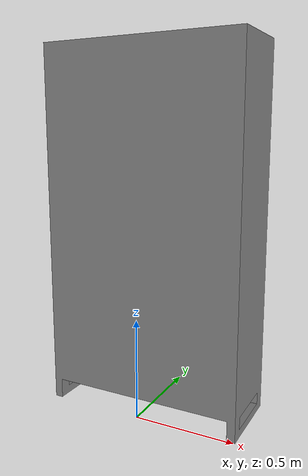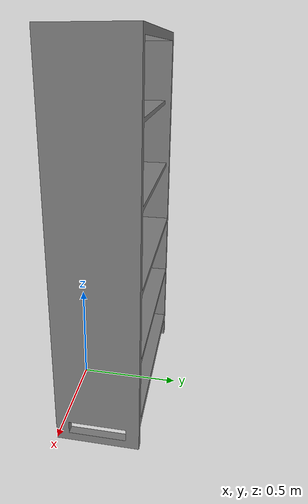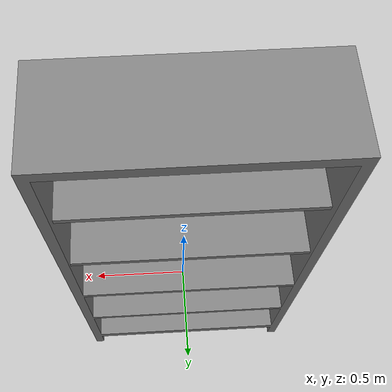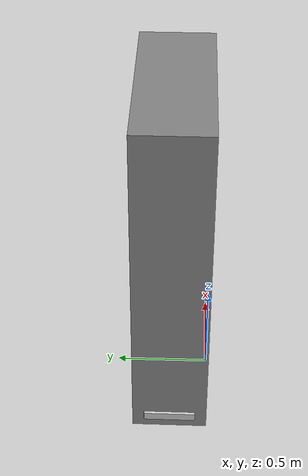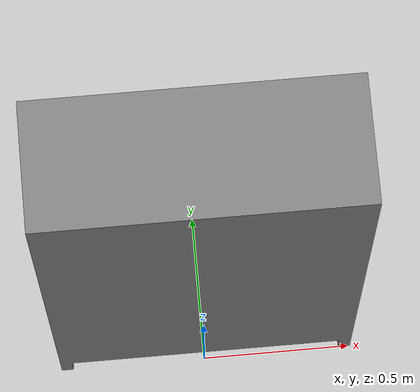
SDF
<?xml version="1.0" ?>
<sdf version="1.6">
  <model name="shelf">
    <static>true</static>
    <link name="link">
      <collision name="collision">
        <geometry>
          <mesh>
            <scale>1 1.5 1</scale>
            <uri>model://Shelf/meshes/shelf.dae</uri>
          </mesh>
        </geometry>
      </collision>
      <visual name="visual">
        <geometry>
          <mesh>
            <scale>1 1.5 1</scale>
            <uri>model://Shelf/meshes/shelf.dae</uri>
          </mesh>
        </geometry>
      </visual>
    </link>
  </model>
</sdf>
